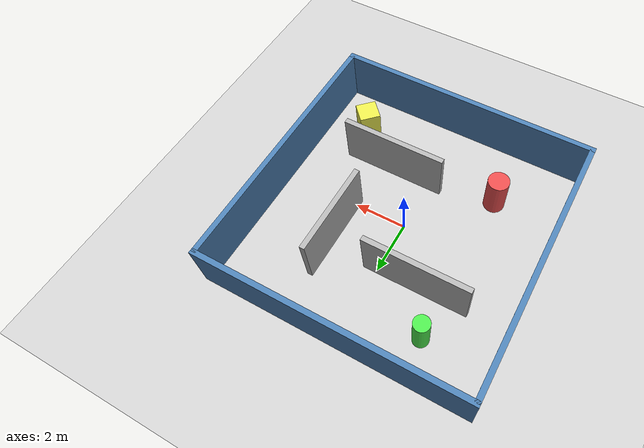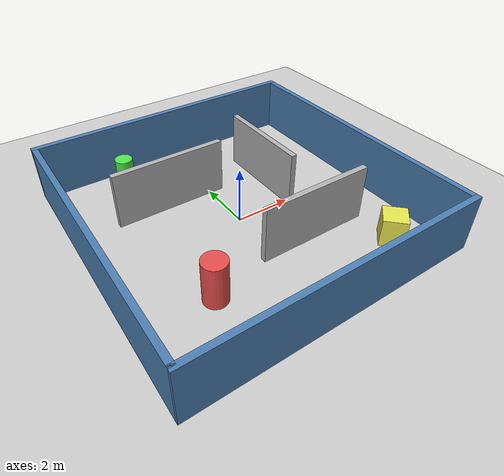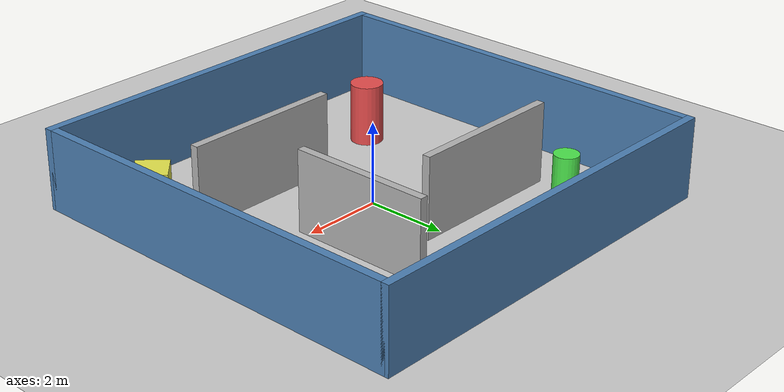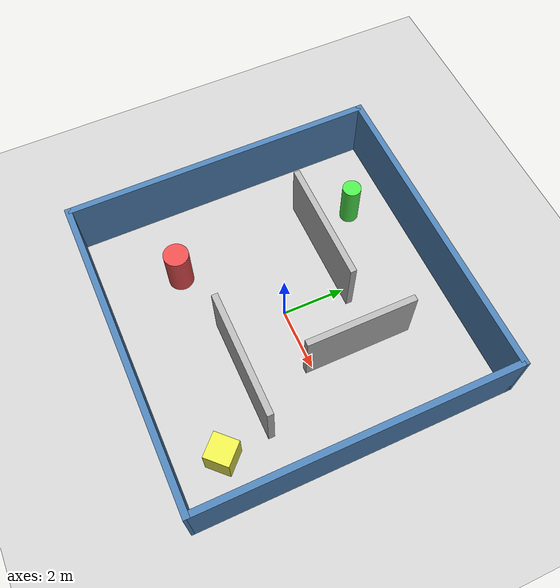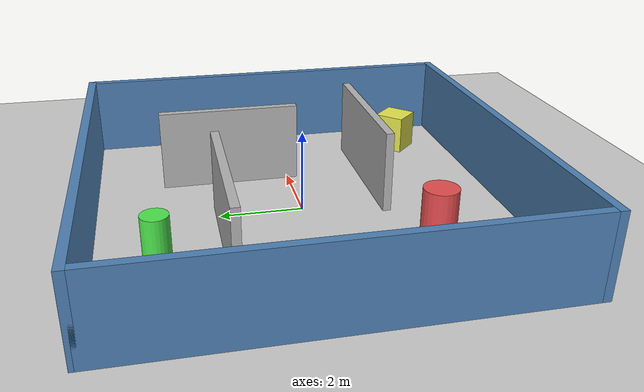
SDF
<?xml version="1.0" ?>
<sdf version="1.6">
  <world name="nav_challenge_world">
    <!-- Ignition / Modern Gazebo World Plugins -->
    <plugin filename="ignition-gazebo-physics-system" name="ignition::gazebo::systems::Physics"/>
    <plugin filename="ignition-gazebo-user-commands-system" name="ignition::gazebo::systems::UserCommands"/>
    <plugin filename="ignition-gazebo-scene-broadcaster-system" name="ignition::gazebo::systems::SceneBroadcaster"/>
    <plugin filename="ignition-gazebo-sensors-system" name="ignition::gazebo::systems::Sensors">
      <render_engine>ogre2</render_engine>
    </plugin>
    <plugin filename="ignition-gazebo-imu-system" name="ignition::gazebo::systems::Imu"/>

    <!-- Directional Sun Light (Inline SDF - Multi-Simulator Compatible) -->
    <light type="directional" name="sun">
      <cast_shadows>true</cast_shadows>
      <pose>0 0 10 0 0 0</pose>
      <diffuse>0.8 0.8 0.8 1</diffuse>
      <specular>0.2 0.2 0.2 1</specular>
      <attenuation>
        <range>1000</range>
        <constant>0.9</constant>
        <linear>0.01</linear>
        <quadratic>0.001</quadratic>
      </attenuation>
      <direction>-0.5 0.1 -0.9</direction>
    </light>

    <!-- Standard Ground Plane (Inline SDF - Multi-Simulator Compatible) -->
    <model name="ground_plane">
      <static>true</static>
      <link name="link">
        <collision name="collision">
          <geometry>
            <plane>
              <normal>0 0 1</normal>
              <size>100 100</size>
            </plane>
          </geometry>
          <surface>
            <friction>
              <ode>
                <mu>100</mu>
                <mu2>50</mu2>
              </ode>
            </friction>
          </surface>
        </collision>
        <visual name="visual">
          <cast_shadows>false</cast_shadows>
          <geometry>
            <plane>
              <normal>0 0 1</normal>
              <size>100 100</size>
            </plane>
          </geometry>
          <material>
            <ambient>0.8 0.8 0.8 1</ambient>
            <diffuse>0.8 0.8 0.8 1</diffuse>
            <specular>0.8 0.8 0.8 1</specular>
          </material>
        </visual>
      </link>
    </model>

    <!-- Ambient Illumination and Shadow Parameters -->
    <scene>
      <ambient>0.6 0.6 0.6 1.0</ambient>
      <background>0.8 0.8 0.8 1.0</background>
      <shadows>true</shadows>
      <grid>true</grid>
    </scene>

    <!-- ODE Physics Engine Tuned for Mobile Robot Contacts -->
    <physics type="ode">
      <max_step_size>0.001</max_step_size>
      <real_time_factor>1.0</real_time_factor>
      <real_time_update_rate>1000.0</real_time_update_rate>
      <ode>
        <solver>
          <type>quick</type>
          <iters>50</iters>
          <sor>1.3</sor>
        </solver>
        <constraints>
          <cfm>0.0</cfm>
          <erp>0.2</erp>
          <contact_max_correcting_vel>100.0</contact_max_correcting_vel>
          <contact_surface_layer>0.001</contact_surface_layer>
        </constraints>
      </ode>
    </physics>

    <!-- ================= OUTER BOUNDARY WALLS (10m x 10m) ================= -->
    <!-- North Wall -->
    <model name="outer_wall_north">
      <static>true</static>
      <pose>0.0 5.0 1.0 0 0 0</pose>
      <link name="link">
        <collision name="collision">
          <geometry><box><size>10.2 0.2 2.0</size></box></geometry>
        </collision>
        <visual name="visual">
          <geometry><box><size>10.2 0.2 2.0</size></box></geometry>
          <material><ambient>0.2 0.3 0.4 1</ambient><diffuse>0.3 0.5 0.7 1</diffuse></material>
        </visual>
      </link>
    </model>

    <!-- South Wall -->
    <model name="outer_wall_south">
      <static>true</static>
      <pose>0.0 -5.0 1.0 0 0 0</pose>
      <link name="link">
        <collision name="collision">
          <geometry><box><size>10.2 0.2 2.0</size></box></geometry>
        </collision>
        <visual name="visual">
          <geometry><box><size>10.2 0.2 2.0</size></box></geometry>
          <material><ambient>0.2 0.3 0.4 1</ambient><diffuse>0.3 0.5 0.7 1</diffuse></material>
        </visual>
      </link>
    </model>

    <!-- East Wall -->
    <model name="outer_wall_east">
      <static>true</static>
      <pose>5.0 0.0 1.0 0 0 0</pose>
      <link name="link">
        <collision name="collision">
          <geometry><box><size>0.2 10.0 2.0</size></box></geometry>
        </collision>
        <visual name="visual">
          <geometry><box><size>0.2 10.0 2.0</size></box></geometry>
          <material><ambient>0.2 0.3 0.4 1</ambient><diffuse>0.3 0.5 0.7 1</diffuse></material>
        </visual>
      </link>
    </model>

    <!-- West Wall -->
    <model name="outer_wall_west">
      <static>true</static>
      <pose>-5.0 0.0 1.0 0 0 0</pose>
      <link name="link">
        <collision name="collision">
          <geometry><box><size>0.2 10.0 2.0</size></box></geometry>
        </collision>
        <visual name="visual">
          <geometry><box><size>0.2 10.0 2.0</size></box></geometry>
          <material><ambient>0.2 0.3 0.4 1</ambient><diffuse>0.3 0.5 0.7 1</diffuse></material>
        </visual>
      </link>
    </model>

    <!-- ================= INTERNAL ROOM PARTITIONS ================= -->
    <!-- Room Divider 1 (Top Left) -->
    <model name="internal_wall_1">
      <static>true</static>
      <pose>-1.5 2.0 1.0 0 0 0</pose>
      <link name="link">
        <collision name="collision">
          <geometry><box><size>4.0 0.2 2.0</size></box></geometry>
        </collision>
        <visual name="visual">
          <geometry><box><size>4.0 0.2 2.0</size></box></geometry>
          <material><ambient>0.5 0.5 0.5 1</ambient><diffuse>0.7 0.7 0.7 1</diffuse></material>
        </visual>
      </link>
    </model>

    <!-- Room Divider 2 (Bottom Right) -->
    <model name="internal_wall_2">
      <static>true</static>
      <pose>1.5 -2.0 1.0 0 0 0</pose>
      <link name="link">
        <collision name="collision">
          <geometry><box><size>4.0 0.2 2.0</size></box></geometry>
        </collision>
        <visual name="visual">
          <geometry><box><size>4.0 0.2 2.0</size></box></geometry>
          <material><ambient>0.5 0.5 0.5 1</ambient><diffuse>0.7 0.7 0.7 1</diffuse></material>
        </visual>
      </link>
    </model>

    <!-- Center Partition Wall -->
    <model name="internal_wall_3">
      <static>true</static>
      <pose>2.0 1.5 1.0 0 0 1.5708</pose>
      <link name="link">
        <collision name="collision">
          <geometry><box><size>3.5 0.2 2.0</size></box></geometry>
        </collision>
        <visual name="visual">
          <geometry><box><size>3.5 0.2 2.0</size></box></geometry>
          <material><ambient>0.5 0.5 0.5 1</ambient><diffuse>0.7 0.7 0.7 1</diffuse></material>
        </visual>
      </link>
    </model>

    <!-- ================= CYLINDERS & CORRIDOR OBSTACLES ================= -->
    <!-- Pillar Red -->
    <model name="pillar_red">
      <static>true</static>
      <pose>-2.5 -2.5 0.75 0 0 0</pose>
      <link name="link">
        <collision name="collision">
          <geometry><cylinder><radius>0.4</radius><length>1.5</length></cylinder></geometry>
        </collision>
        <visual name="visual">
          <geometry><cylinder><radius>0.4</radius><length>1.5</length></cylinder></geometry>
          <material><ambient>0.8 0.2 0.2 1</ambient><diffuse>0.9 0.3 0.3 1</diffuse></material>
        </visual>
      </link>
    </model>

    <!-- Pillar Green -->
    <model name="pillar_green">
      <static>true</static>
      <pose>-2.5 3.5 0.75 0 0 0</pose>
      <link name="link">
        <collision name="collision">
          <geometry><cylinder><radius>0.3</radius><length>1.5</length></cylinder></geometry>
        </collision>
        <visual name="visual">
          <geometry><cylinder><radius>0.3</radius><length>1.5</length></cylinder></geometry>
          <material><ambient>0.2 0.8 0.2 1</ambient><diffuse>0.3 0.9 0.3 1</diffuse></material>
        </visual>
      </link>
    </model>

    <!-- Square Obstacle Box -->
    <model name="obstacle_box_yellow">
      <static>true</static>
      <pose>3.5 -3.5 0.5 0 0 0.785</pose>
      <link name="link">
        <collision name="collision">
          <geometry><box><size>0.8 0.8 1.0</size></box></geometry>
        </collision>
        <visual name="visual">
          <geometry><box><size>0.8 0.8 1.0</size></box></geometry>
          <material><ambient>0.8 0.8 0.2 1</ambient><diffuse>0.9 0.9 0.3 1</diffuse></material>
        </visual>
      </link>
    </model>
  </world>
</sdf>
